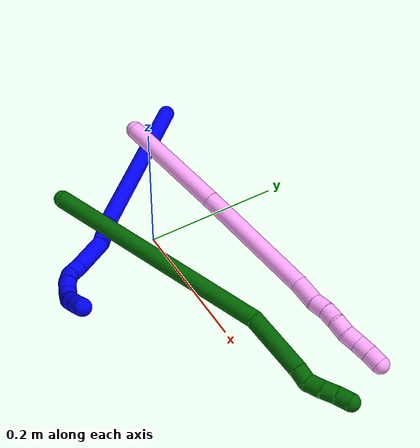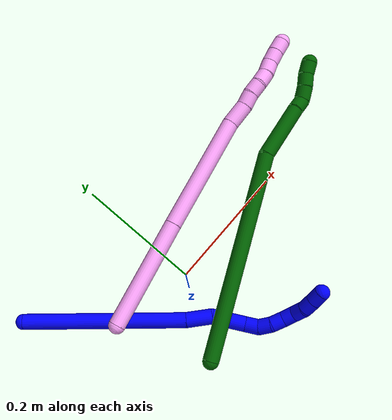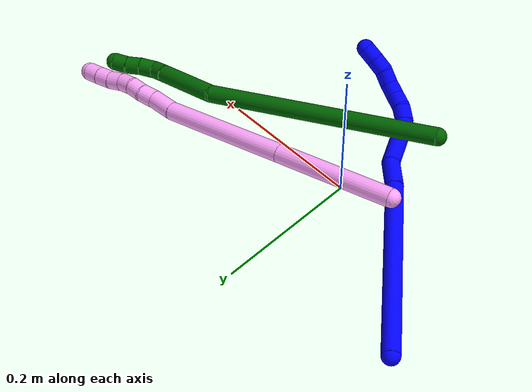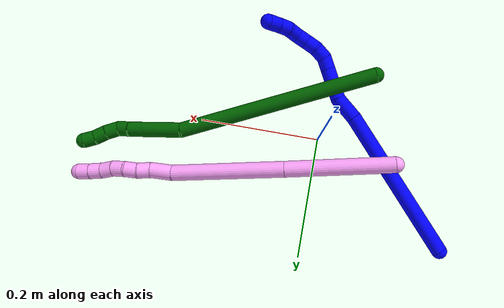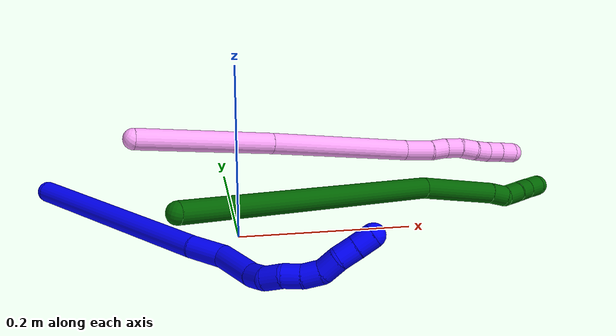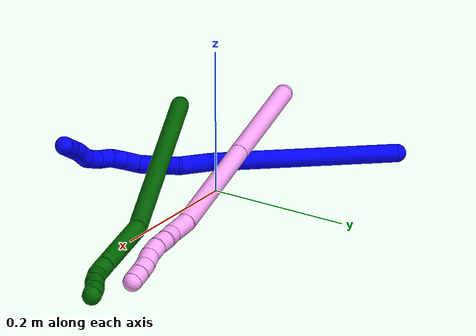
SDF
<sdf version="1.7">
 <world name="default">
  <model name="photoneo_s_sensor">
   <static>1</static>
   <pose>0 0 2 1.57079 1.57079 3.14159</pose>
   <link name="link">
    <inertial><mass>0.1</mass></inertial>
    <sensor name="sensor" type="depth">
     <update_rate>30</update_rate>
     <camera>
      <horizontal_fov>1.22</horizontal_fov>
      <image><width>1920</width><height>1200</height><format>B8G8R8</format></image>
      <clip><near>0.1</near><far>4</far></clip>
      <depth_camera><output>points</output></depth_camera>
     </camera>
     <plugin name="camera_plugin" filename="libgazebo_ros_depth_camera.so">
      <baseline>0.2</baseline>
      <alwaysOn>1</alwaysOn>
      <updateRate>0.0</updateRate>
      <cameraName>camera_ir</cameraName>
      <imageTopicName>/camera/color/image_raw</imageTopicName>
      <cameraInfoTopicName>/camera/color/camera_info</cameraInfoTopicName>
      <depthImageTopicName>/camera/depth/image_raw</depthImageTopicName>
      <depthImageCameraInfoTopicName>/camera/depth/camera_info</depthImageCameraInfoTopicName>
      <pointCloudTopicName>/camera/depth/points</pointCloudTopicName>
      <frameName>fr_optical</frameName>
      <pointCloudCutoff>0.1</pointCloudCutoff>
      <pointCloudCutoffMax>2.0</pointCloudCutoffMax>
      <distortionK1>0</distortionK1>
      <distortionK2>0</distortionK2>
      <distortionK3>0</distortionK3>
      <distortionT1>0</distortionT1>
      <distortionT2>0</distortionT2>
      <CxPrime>0</CxPrime>
      <Cx>0</Cx>
      <Cy>0</Cy>
      <focalLength>0</focalLength>
      <hackBaseline>0</hackBaseline>
     </plugin>
    </sensor>
   </link>
  </model>
  <model name="bin">
   <static>1</static>
   <link name="bottom">
    <collision name="collision-bottom">
     <pose>0 0 -0.01 0 -0 0</pose>
     <geometry><box><size>0.8 0.6 0.02</size></box></geometry>
     <surface>
      <friction><ode><mu>100</mu><mu2>100</mu2></ode></friction>
      <contact><collide_bitmask>65535</collide_bitmask></contact>
     </surface>
    </collision>
   </link>
   <link name="west_wall">
    <collision name="collision-west_wall">
     <pose>-0.41 0 0.1 0 -0 0</pose>
     <geometry><box><size>0.02 0.6 0.2</size></box></geometry>
     <surface>
      <friction><ode><mu>100</mu><mu2>100</mu2></ode></friction>
      <contact><collide_bitmask>65535</collide_bitmask></contact>
     </surface>
    </collision>
   </link>
   <link name="east_wall">
    <collision name="collision-east_wall">
     <pose>0.41 0 0.1 0 -0 0</pose>
     <geometry><box><size>0.02 0.6 0.2</size></box></geometry>
     <surface>
      <friction><ode><mu>100</mu><mu2>100</mu2></ode></friction>
      <contact><collide_bitmask>65535</collide_bitmask></contact>
     </surface>
    </collision>
   </link>
   <link name="south_wall">
    <collision name="collision-south_wall">
     <pose>0 -0.31 0.1 0 -0 0</pose>
     <geometry><box><size>0.8 0.02 0.2</size></box></geometry>
     <surface>
      <friction><ode><mu>100</mu><mu2>100</mu2></ode></friction>
      <contact><collide_bitmask>65535</collide_bitmask></contact>
     </surface>
    </collision>
   </link>
   <link name="north_wall">
    <collision name="collision-north_wall">
     <pose>0 0.31 0.1 0 -0 0</pose>
     <geometry><box><size>0.8 0.02 0.2</size></box></geometry>
     <surface>
      <friction><ode><mu>100</mu><mu2>100</mu2></ode></friction>
      <contact><collide_bitmask>65535</collide_bitmask></contact>
     </surface>
    </collision>
   </link>
  </model>
  <model name="1">
   <static>0</static>
   <link name="1">
    <collision name="collision-cylinder-e_1_1_4">
     <pose>0.082902 -0.089436 0.043331 1.11963 0.695248 0.446577</pose>
     <geometry><cylinder><radius>0.0125</radius><length>0.258836</length></cylinder></geometry>
     <surface>
      <friction><ode><mu>1.16</mu><mu2>1.16</mu2><slip1>0</slip1><slip2>0</slip2></ode></friction>
      <contact><ode><kp>1e+06</kp><kd>1</kd><max_vel>0</max_vel><min_depth>0.001</min_depth></ode></contact>
     </surface>
    </collision>
    <visual name="visual-cylinder-e_1_1_4">
     <pose>0.082902 -0.089436 0.043331 1.11963 0.695248 0.446577</pose>
     <geometry><cylinder><radius>0.0125</radius><length>0.258836</length></cylinder></geometry>
     <material><ambient>0 0 1 1</ambient></material>
    </visual>
    <collision name="collision-cylinder-e_2_4_5">
     <pose>0.179758 -0.193855 0.090988 1.28968 0.729875 0.559598</pose>
     <geometry><cylinder><radius>0.0125</radius><length>0.041855</length></cylinder></geometry>
     <surface>
      <friction><ode><mu>1.16</mu><mu2>1.16</mu2><slip1>0</slip1><slip2>0</slip2></ode></friction>
      <contact><ode><kp>1e+06</kp><kd>1</kd><max_vel>0</max_vel><min_depth>0.001</min_depth></ode></contact>
     </surface>
    </collision>
    <visual name="visual-cylinder-e_2_4_5">
     <pose>0.179758 -0.193855 0.090988 1.28968 0.729875 0.559598</pose>
     <geometry><cylinder><radius>0.0125</radius><length>0.041855</length></cylinder></geometry>
     <material><ambient>0 0 1 1</ambient></material>
    </visual>
    <collision name="collision-cylinder-e_3_5_6">
     <pose>0.208219 -0.22643 0.110018 0.874585 0.564174 0.269324</pose>
     <geometry><cylinder><radius>0.0125</radius><length>0.054259</length></cylinder></geometry>
     <surface>
      <friction><ode><mu>1.16</mu><mu2>1.16</mu2><slip1>0</slip1><slip2>0</slip2></ode></friction>
      <contact><ode><kp>1e+06</kp><kd>1</kd><max_vel>0</max_vel><min_depth>0.001</min_depth></ode></contact>
     </surface>
    </collision>
    <visual name="visual-cylinder-e_3_5_6">
     <pose>0.208219 -0.22643 0.110018 0.874585 0.564174 0.269324</pose>
     <geometry><cylinder><radius>0.0125</radius><length>0.054259</length></cylinder></geometry>
     <material><ambient>0 0 1 1</ambient></material>
    </visual>
    <collision name="collision-cylinder-e_4_6_7">
     <pose>0.230208 -0.249409 0.130704 0.733175 0.748715 0.299432</pose>
     <geometry><cylinder><radius>0.0125</radius><length>0.021985</length></cylinder></geometry>
     <surface>
      <friction><ode><mu>1.16</mu><mu2>1.16</mu2><slip1>0</slip1><slip2>0</slip2></ode></friction>
      <contact><ode><kp>1e+06</kp><kd>1</kd><max_vel>0</max_vel><min_depth>0.001</min_depth></ode></contact>
     </surface>
    </collision>
    <visual name="visual-cylinder-e_4_6_7">
     <pose>0.230208 -0.249409 0.130704 0.733175 0.748715 0.299432</pose>
     <geometry><cylinder><radius>0.0125</radius><length>0.021985</length></cylinder></geometry>
     <material><ambient>0 0 1 1</ambient></material>
    </visual>
    <collision name="collision-cylinder-e_5_7_8">
     <pose>0.247271 -0.259239 0.138203 1.24196 1.1154 0.839416</pose>
     <geometry><cylinder><radius>0.0125</radius><length>0.021334</length></cylinder></geometry>
     <surface>
      <friction><ode><mu>1.16</mu><mu2>1.16</mu2><slip1>0</slip1><slip2>0</slip2></ode></friction>
      <contact><ode><kp>1e+06</kp><kd>1</kd><max_vel>0</max_vel><min_depth>0.001</min_depth></ode></contact>
     </surface>
    </collision>
    <visual name="visual-cylinder-e_5_7_8">
     <pose>0.247271 -0.259239 0.138203 1.24196 1.1154 0.839416</pose>
     <geometry><cylinder><radius>0.0125</radius><length>0.021334</length></cylinder></geometry>
     <material><ambient>0 0 1 1</ambient></material>
    </visual>
    <collision name="collision-cylinder-e_6_8_9">
     <pose>0.265037 -0.26982 0.139038 1.68096 0.924239 1.01522</pose>
     <geometry><cylinder><radius>0.0125</radius><length>0.020512</length></cylinder></geometry>
     <surface>
      <friction><ode><mu>1.16</mu><mu2>1.16</mu2><slip1>0</slip1><slip2>0</slip2></ode></friction>
      <contact><ode><kp>1e+06</kp><kd>1</kd><max_vel>0</max_vel><min_depth>0.001</min_depth></ode></contact>
     </surface>
    </collision>
    <visual name="visual-cylinder-e_6_8_9">
     <pose>0.265037 -0.26982 0.139038 1.68096 0.924239 1.01522</pose>
     <geometry><cylinder><radius>0.0125</radius><length>0.020512</length></cylinder></geometry>
     <material><ambient>0 0 1 1</ambient></material>
    </visual>
    <collision name="collision-cylinder-e_7_9_10">
     <pose>0.282452 -0.2799 0.137291 1.8357 1.15441 1.41057</pose>
     <geometry><cylinder><radius>0.0125</radius><length>0.020184</length></cylinder></geometry>
     <surface>
      <friction><ode><mu>1.16</mu><mu2>1.16</mu2><slip1>0</slip1><slip2>0</slip2></ode></friction>
      <contact><ode><kp>1e+06</kp><kd>1</kd><max_vel>0</max_vel><min_depth>0.001</min_depth></ode></contact>
     </surface>
    </collision>
    <visual name="visual-cylinder-e_7_9_10">
     <pose>0.282452 -0.2799 0.137291 1.8357 1.15441 1.41057</pose>
     <geometry><cylinder><radius>0.0125</radius><length>0.020184</length></cylinder></geometry>
     <material><ambient>0 0 1 1</ambient></material>
    </visual>
    <collision name="collision-cylinder-e_8_10_11">
     <pose>0.302112 -0.283326 0.135245 -2.65716 1.4653 -2.60559</pose>
     <geometry><cylinder><radius>0.0125</radius><length>0.020976</length></cylinder></geometry>
     <surface>
      <friction><ode><mu>1.16</mu><mu2>1.16</mu2><slip1>0</slip1><slip2>0</slip2></ode></friction>
      <contact><ode><kp>1e+06</kp><kd>1</kd><max_vel>0</max_vel><min_depth>0.001</min_depth></ode></contact>
     </surface>
    </collision>
    <visual name="visual-cylinder-e_8_10_11">
     <pose>0.302112 -0.283326 0.135245 -2.65716 1.4653 -2.60559</pose>
     <geometry><cylinder><radius>0.0125</radius><length>0.020976</length></cylinder></geometry>
     <material><ambient>0 0 1 1</ambient></material>
    </visual>
    <collision name="collision-cylinder-e_9_11_12">
     <pose>0.321951 -0.283582 0.130909 2.91607 1.21984 2.82028</pose>
     <geometry><cylinder><radius>0.0125</radius><length>0.020042</length></cylinder></geometry>
     <surface>
      <friction><ode><mu>1.16</mu><mu2>1.16</mu2><slip1>0</slip1><slip2>0</slip2></ode></friction>
      <contact><ode><kp>1e+06</kp><kd>1</kd><max_vel>0</max_vel><min_depth>0.001</min_depth></ode></contact>
     </surface>
    </collision>
    <visual name="visual-cylinder-e_9_11_12">
     <pose>0.321951 -0.283582 0.130909 2.91607 1.21984 2.82028</pose>
     <geometry><cylinder><radius>0.0125</radius><length>0.020042</length></cylinder></geometry>
     <material><ambient>0 0 1 1</ambient></material>
    </visual>
    <collision name="collision-cylinder-e_10_12_2">
     <pose>0.340665 -0.284813 0.12389 3.01624 1.1932 2.9573</pose>
     <geometry><cylinder><radius>0.0125</radius><length>0.020016</length></cylinder></geometry>
     <surface>
      <friction><ode><mu>1.16</mu><mu2>1.16</mu2><slip1>0</slip1><slip2>0</slip2></ode></friction>
      <contact><ode><kp>1e+06</kp><kd>1</kd><max_vel>0</max_vel><min_depth>0.001</min_depth></ode></contact>
     </surface>
    </collision>
    <visual name="visual-cylinder-e_10_12_2">
     <pose>0.340665 -0.284813 0.12389 3.01624 1.1932 2.9573</pose>
     <geometry><cylinder><radius>0.0125</radius><length>0.020016</length></cylinder></geometry>
     <material><ambient>0 0 1 1</ambient></material>
    </visual>
    <collision name="collision-sphere-2">
     <pose>0.349968 -0.285275 0.120229 0 -0 0</pose>
     <geometry><sphere><radius>0.0125</radius></sphere></geometry>
     <surface>
      <friction><ode><mu>1.16</mu><mu2>1.16</mu2><slip1>0</slip1><slip2>0</slip2></ode></friction>
      <contact><ode><kp>1e+06</kp><kd>1</kd><max_vel>0</max_vel><min_depth>0.001</min_depth></ode></contact>
     </surface>
    </collision>
    <visual name="visual-sphere-2">
     <pose>0.349968 -0.285275 0.120229 0 -0 0</pose>
     <geometry><sphere><radius>0.0125</radius></sphere></geometry>
     <material><ambient>0 0 1 1</ambient></material>
    </visual>
    <collision name="collision-sphere-12">
     <pose>0.331362 -0.284352 0.127551 0 -0 0</pose>
     <geometry><sphere><radius>0.0125</radius></sphere></geometry>
     <surface>
      <friction><ode><mu>1.16</mu><mu2>1.16</mu2><slip1>0</slip1><slip2>0</slip2></ode></friction>
      <contact><ode><kp>1e+06</kp><kd>1</kd><max_vel>0</max_vel><min_depth>0.001</min_depth></ode></contact>
     </surface>
    </collision>
    <visual name="visual-sphere-12">
     <pose>0.331362 -0.284352 0.127551 0 -0 0</pose>
     <geometry><sphere><radius>0.0125</radius></sphere></geometry>
     <material><ambient>0 0 1 1</ambient></material>
    </visual>
    <collision name="collision-sphere-11">
     <pose>0.312541 -0.282811 0.134267 0 -0 0</pose>
     <geometry><sphere><radius>0.0125</radius></sphere></geometry>
     <surface>
      <friction><ode><mu>1.16</mu><mu2>1.16</mu2><slip1>0</slip1><slip2>0</slip2></ode></friction>
      <contact><ode><kp>1e+06</kp><kd>1</kd><max_vel>0</max_vel><min_depth>0.001</min_depth></ode></contact>
     </surface>
    </collision>
    <visual name="visual-sphere-11">
     <pose>0.312541 -0.282811 0.134267 0 -0 0</pose>
     <geometry><sphere><radius>0.0125</radius></sphere></geometry>
     <material><ambient>0 0 1 1</ambient></material>
    </visual>
    <collision name="collision-sphere-10">
     <pose>0.291682 -0.28384 0.136222 0 -0 0</pose>
     <geometry><sphere><radius>0.0125</radius></sphere></geometry>
     <surface>
      <friction><ode><mu>1.16</mu><mu2>1.16</mu2><slip1>0</slip1><slip2>0</slip2></ode></friction>
      <contact><ode><kp>1e+06</kp><kd>1</kd><max_vel>0</max_vel><min_depth>0.001</min_depth></ode></contact>
     </surface>
    </collision>
    <visual name="visual-sphere-10">
     <pose>0.291682 -0.28384 0.136222 0 -0 0</pose>
     <geometry><sphere><radius>0.0125</radius></sphere></geometry>
     <material><ambient>0 0 1 1</ambient></material>
    </visual>
    <collision name="collision-sphere-9">
     <pose>0.273222 -0.275961 0.138359 0 -0 0</pose>
     <geometry><sphere><radius>0.0125</radius></sphere></geometry>
     <surface>
      <friction><ode><mu>1.16</mu><mu2>1.16</mu2><slip1>0</slip1><slip2>0</slip2></ode></friction>
      <contact><ode><kp>1e+06</kp><kd>1</kd><max_vel>0</max_vel><min_depth>0.001</min_depth></ode></contact>
     </surface>
    </collision>
    <visual name="visual-sphere-9">
     <pose>0.273222 -0.275961 0.138359 0 -0 0</pose>
     <geometry><sphere><radius>0.0125</radius></sphere></geometry>
     <material><ambient>0 0 1 1</ambient></material>
    </visual>
    <collision name="collision-sphere-4">
     <pose>0.165804 -0.178871 0.086661 0 -0 0</pose>
     <geometry><sphere><radius>0.0125</radius></sphere></geometry>
     <surface>
      <friction><ode><mu>1.16</mu><mu2>1.16</mu2><slip1>0</slip1><slip2>0</slip2></ode></friction>
      <contact><ode><kp>1e+06</kp><kd>1</kd><max_vel>0</max_vel><min_depth>0.001</min_depth></ode></contact>
     </surface>
    </collision>
    <visual name="visual-sphere-4">
     <pose>0.165804 -0.178871 0.086661 0 -0 0</pose>
     <geometry><sphere><radius>0.0125</radius></sphere></geometry>
     <material><ambient>0 0 1 1</ambient></material>
    </visual>
    <collision name="collision-sphere-1">
     <geometry><sphere><radius>0.0125</radius></sphere></geometry>
     <surface>
      <friction><ode><mu>1.16</mu><mu2>1.16</mu2><slip1>0</slip1><slip2>0</slip2></ode></friction>
      <contact><ode><kp>1e+06</kp><kd>1</kd><max_vel>0</max_vel><min_depth>0.001</min_depth></ode></contact>
     </surface>
    </collision>
    <visual name="visual-sphere-1">
     <geometry><sphere><radius>0.0125</radius></sphere></geometry>
     <material><ambient>0 0 1 1</ambient></material>
    </visual>
    <collision name="collision-sphere-8">
     <pose>0.256851 -0.263679 0.139718 0 -0 0</pose>
     <geometry><sphere><radius>0.0125</radius></sphere></geometry>
     <surface>
      <friction><ode><mu>1.16</mu><mu2>1.16</mu2><slip1>0</slip1><slip2>0</slip2></ode></friction>
      <contact><ode><kp>1e+06</kp><kd>1</kd><max_vel>0</max_vel><min_depth>0.001</min_depth></ode></contact>
     </surface>
    </collision>
    <visual name="visual-sphere-8">
     <pose>0.256851 -0.263679 0.139718 0 -0 0</pose>
     <geometry><sphere><radius>0.0125</radius></sphere></geometry>
     <material><ambient>0 0 1 1</ambient></material>
    </visual>
    <collision name="collision-sphere-5">
     <pose>0.193712 -0.20884 0.095315 0 -0 0</pose>
     <geometry><sphere><radius>0.0125</radius></sphere></geometry>
     <surface>
      <friction><ode><mu>1.16</mu><mu2>1.16</mu2><slip1>0</slip1><slip2>0</slip2></ode></friction>
      <contact><ode><kp>1e+06</kp><kd>1</kd><max_vel>0</max_vel><min_depth>0.001</min_depth></ode></contact>
     </surface>
    </collision>
    <visual name="visual-sphere-5">
     <pose>0.193712 -0.20884 0.095315 0 -0 0</pose>
     <geometry><sphere><radius>0.0125</radius></sphere></geometry>
     <material><ambient>0 0 1 1</ambient></material>
    </visual>
    <collision name="collision-sphere-6">
     <pose>0.222726 -0.24402 0.12472 0 -0 0</pose>
     <geometry><sphere><radius>0.0125</radius></sphere></geometry>
     <surface>
      <friction><ode><mu>1.16</mu><mu2>1.16</mu2><slip1>0</slip1><slip2>0</slip2></ode></friction>
      <contact><ode><kp>1e+06</kp><kd>1</kd><max_vel>0</max_vel><min_depth>0.001</min_depth></ode></contact>
     </surface>
    </collision>
    <visual name="visual-sphere-6">
     <pose>0.222726 -0.24402 0.12472 0 -0 0</pose>
     <geometry><sphere><radius>0.0125</radius></sphere></geometry>
     <material><ambient>0 0 1 1</ambient></material>
    </visual>
    <collision name="collision-sphere-7">
     <pose>0.237691 -0.254798 0.136688 0 -0 0</pose>
     <geometry><sphere><radius>0.0125</radius></sphere></geometry>
     <surface>
      <friction><ode><mu>1.16</mu><mu2>1.16</mu2><slip1>0</slip1><slip2>0</slip2></ode></friction>
      <contact><ode><kp>1e+06</kp><kd>1</kd><max_vel>0</max_vel><min_depth>0.001</min_depth></ode></contact>
     </surface>
    </collision>
    <visual name="visual-sphere-7">
     <pose>0.237691 -0.254798 0.136688 0 -0 0</pose>
     <geometry><sphere><radius>0.0125</radius></sphere></geometry>
     <material><ambient>0 0 1 1</ambient></material>
    </visual>
    <inertial>
     <pose>0.162724 -0.166149 0.080758 0 -0 0</pose>
     <mass>0.5</mass>
     <inertia>
      <ixx>0.001545</ixx>
      <ixy>0</ixy>
      <ixz>0</ixz>
      <iyy>0.001429</iyy>
      <iyz>0</iyz>
      <izz>7.9e-05</izz>
     </inertia>
    </inertial>
   </link>
   <pose>-0.224857 0.148812 0.011493 1.32074 -0.745249 -0.333215</pose>
  </model>
  <model name="4">
   <static>0</static>
   <link name="4">
    <collision name="collision-cylinder-e_1_1_4">
     <pose>0.033188 0.020867 0.072626 -0.279789 0.413833 -0.059103</pose>
     <geometry><cylinder><radius>0.0125</radius><length>0.165063</length></cylinder></geometry>
     <surface>
      <friction><ode><mu>1.16</mu><mu2>1.16</mu2><slip1>0</slip1><slip2>0</slip2></ode></friction>
      <contact><ode><kp>1e+06</kp><kd>1</kd><max_vel>0</max_vel><min_depth>0.001</min_depth></ode></contact>
     </surface>
    </collision>
    <visual name="visual-cylinder-e_1_1_4">
     <pose>0.033188 0.020867 0.072626 -0.279789 0.413833 -0.059103</pose>
     <geometry><cylinder><radius>0.0125</radius><length>0.165063</length></cylinder></geometry>
     <material><ambient>1 0.65098 0.996078 1</ambient></material>
    </visual>
    <collision name="collision-cylinder-e_2_4_5">
     <pose>0.100654 0.064206 0.224283 -0.277025 0.395244 -0.055813</pose>
     <geometry><cylinder><radius>0.0125</radius><length>0.178053</length></cylinder></geometry>
     <surface>
      <friction><ode><mu>1.16</mu><mu2>1.16</mu2><slip1>0</slip1><slip2>0</slip2></ode></friction>
      <contact><ode><kp>1e+06</kp><kd>1</kd><max_vel>0</max_vel><min_depth>0.001</min_depth></ode></contact>
     </surface>
    </collision>
    <visual name="visual-cylinder-e_2_4_5">
     <pose>0.100654 0.064206 0.224283 -0.277025 0.395244 -0.055813</pose>
     <geometry><cylinder><radius>0.0125</radius><length>0.178053</length></cylinder></geometry>
     <material><ambient>1 0.65098 0.996078 1</ambient></material>
    </visual>
    <collision name="collision-cylinder-e_3_5_6">
     <pose>0.141072 0.093971 0.318164 -0.456531 0.35537 -0.083389</pose>
     <geometry><cylinder><radius>0.0125</radius><length>0.035294</length></cylinder></geometry>
     <surface>
      <friction><ode><mu>1.16</mu><mu2>1.16</mu2><slip1>0</slip1><slip2>0</slip2></ode></friction>
      <contact><ode><kp>1e+06</kp><kd>1</kd><max_vel>0</max_vel><min_depth>0.001</min_depth></ode></contact>
     </surface>
    </collision>
    <visual name="visual-cylinder-e_3_5_6">
     <pose>0.141072 0.093971 0.318164 -0.456531 0.35537 -0.083389</pose>
     <geometry><cylinder><radius>0.0125</radius><length>0.035294</length></cylinder></geometry>
     <material><ambient>1 0.65098 0.996078 1</ambient></material>
    </visual>
    <collision name="collision-cylinder-e_4_6_7">
     <pose>0.152686 0.104586 0.341231 -0.384202 0.553253 -0.110327</pose>
     <geometry><cylinder><radius>0.0125</radius><length>0.020835</length></cylinder></geometry>
     <surface>
      <friction><ode><mu>1.16</mu><mu2>1.16</mu2><slip1>0</slip1><slip2>0</slip2></ode></friction>
      <contact><ode><kp>1e+06</kp><kd>1</kd><max_vel>0</max_vel><min_depth>0.001</min_depth></ode></contact>
     </surface>
    </collision>
    <visual name="visual-cylinder-e_4_6_7">
     <pose>0.152686 0.104586 0.341231 -0.384202 0.553253 -0.110327</pose>
     <geometry><cylinder><radius>0.0125</radius><length>0.020835</length></cylinder></geometry>
     <material><ambient>1 0.65098 0.996078 1</ambient></material>
    </visual>
    <collision name="collision-cylinder-e_5_7_8">
     <pose>0.161882 0.112189 0.357847 -0.471325 0.376029 -0.09131</pose>
     <geometry><cylinder><radius>0.0125</radius><length>0.020269</length></cylinder></geometry>
     <surface>
      <friction><ode><mu>1.16</mu><mu2>1.16</mu2><slip1>0</slip1><slip2>0</slip2></ode></friction>
      <contact><ode><kp>1e+06</kp><kd>1</kd><max_vel>0</max_vel><min_depth>0.001</min_depth></ode></contact>
     </surface>
    </collision>
    <visual name="visual-cylinder-e_5_7_8">
     <pose>0.161882 0.112189 0.357847 -0.471325 0.376029 -0.09131</pose>
     <geometry><cylinder><radius>0.0125</radius><length>0.020269</length></cylinder></geometry>
     <material><ambient>1 0.65098 0.996078 1</ambient></material>
    </visual>
    <collision name="collision-cylinder-e_6_8_9">
     <pose>0.168332 0.119314 0.375629 -0.294365 0.271396 -0.040479</pose>
     <geometry><cylinder><radius>0.0125</radius><length>0.020356</length></cylinder></geometry>
     <surface>
      <friction><ode><mu>1.16</mu><mu2>1.16</mu2><slip1>0</slip1><slip2>0</slip2></ode></friction>
      <contact><ode><kp>1e+06</kp><kd>1</kd><max_vel>0</max_vel><min_depth>0.001</min_depth></ode></contact>
     </surface>
    </collision>
    <visual name="visual-cylinder-e_6_8_9">
     <pose>0.168332 0.119314 0.375629 -0.294365 0.271396 -0.040479</pose>
     <geometry><cylinder><radius>0.0125</radius><length>0.020356</length></cylinder></geometry>
     <material><ambient>1 0.65098 0.996078 1</ambient></material>
    </visual>
    <collision name="collision-cylinder-e_7_9_10">
     <pose>0.175027 0.123135 0.394164 -0.106264 0.406897 -0.021942</pose>
     <geometry><cylinder><radius>0.0125</radius><length>0.020043</length></cylinder></geometry>
     <surface>
      <friction><ode><mu>1.16</mu><mu2>1.16</mu2><slip1>0</slip1><slip2>0</slip2></ode></friction>
      <contact><ode><kp>1e+06</kp><kd>1</kd><max_vel>0</max_vel><min_depth>0.001</min_depth></ode></contact>
     </surface>
    </collision>
    <visual name="visual-cylinder-e_7_9_10">
     <pose>0.175027 0.123135 0.394164 -0.106264 0.406897 -0.021942</pose>
     <geometry><cylinder><radius>0.0125</radius><length>0.020043</length></cylinder></geometry>
     <material><ambient>1 0.65098 0.996078 1</ambient></material>
    </visual>
    <collision name="collision-cylinder-e_8_10_11">
     <pose>0.183178 0.126563 0.412062 -0.273341 0.431749 -0.060299</pose>
     <geometry><cylinder><radius>0.0125</radius><length>0.020001</length></cylinder></geometry>
     <surface>
      <friction><ode><mu>1.16</mu><mu2>1.16</mu2><slip1>0</slip1><slip2>0</slip2></ode></friction>
      <contact><ode><kp>1e+06</kp><kd>1</kd><max_vel>0</max_vel><min_depth>0.001</min_depth></ode></contact>
     </surface>
    </collision>
    <visual name="visual-cylinder-e_8_10_11">
     <pose>0.183178 0.126563 0.412062 -0.273341 0.431749 -0.060299</pose>
     <geometry><cylinder><radius>0.0125</radius><length>0.020001</length></cylinder></geometry>
     <material><ambient>1 0.65098 0.996078 1</ambient></material>
    </visual>
    <collision name="collision-cylinder-e_9_11_2">
     <pose>0.191111 0.131746 0.429714 -0.297486 0.382538 -0.058016</pose>
     <geometry><cylinder><radius>0.0125</radius><length>0.020085</length></cylinder></geometry>
     <surface>
      <friction><ode><mu>1.16</mu><mu2>1.16</mu2><slip1>0</slip1><slip2>0</slip2></ode></friction>
      <contact><ode><kp>1e+06</kp><kd>1</kd><max_vel>0</max_vel><min_depth>0.001</min_depth></ode></contact>
     </surface>
    </collision>
    <visual name="visual-cylinder-e_9_11_2">
     <pose>0.191111 0.131746 0.429714 -0.297486 0.382538 -0.058016</pose>
     <geometry><cylinder><radius>0.0125</radius><length>0.020085</length></cylinder></geometry>
     <material><ambient>1 0.65098 0.996078 1</ambient></material>
    </visual>
    <collision name="collision-sphere-2">
     <pose>0.194859 0.134477 0.438622 0 -0 0</pose>
     <geometry><sphere><radius>0.0125</radius></sphere></geometry>
     <surface>
      <friction><ode><mu>1.16</mu><mu2>1.16</mu2><slip1>0</slip1><slip2>0</slip2></ode></friction>
      <contact><ode><kp>1e+06</kp><kd>1</kd><max_vel>0</max_vel><min_depth>0.001</min_depth></ode></contact>
     </surface>
    </collision>
    <visual name="visual-sphere-2">
     <pose>0.194859 0.134477 0.438622 0 -0 0</pose>
     <geometry><sphere><radius>0.0125</radius></sphere></geometry>
     <material><ambient>1 0.65098 0.996078 1</ambient></material>
    </visual>
    <collision name="collision-sphere-11">
     <pose>0.187362 0.129015 0.420807 0 -0 0</pose>
     <geometry><sphere><radius>0.0125</radius></sphere></geometry>
     <surface>
      <friction><ode><mu>1.16</mu><mu2>1.16</mu2><slip1>0</slip1><slip2>0</slip2></ode></friction>
      <contact><ode><kp>1e+06</kp><kd>1</kd><max_vel>0</max_vel><min_depth>0.001</min_depth></ode></contact>
     </surface>
    </collision>
    <visual name="visual-sphere-11">
     <pose>0.187362 0.129015 0.420807 0 -0 0</pose>
     <geometry><sphere><radius>0.0125</radius></sphere></geometry>
     <material><ambient>1 0.65098 0.996078 1</ambient></material>
    </visual>
    <collision name="collision-sphere-10">
     <pose>0.178993 0.124111 0.403316 0 -0 0</pose>
     <geometry><sphere><radius>0.0125</radius></sphere></geometry>
     <surface>
      <friction><ode><mu>1.16</mu><mu2>1.16</mu2><slip1>0</slip1><slip2>0</slip2></ode></friction>
      <contact><ode><kp>1e+06</kp><kd>1</kd><max_vel>0</max_vel><min_depth>0.001</min_depth></ode></contact>
     </surface>
    </collision>
    <visual name="visual-sphere-10">
     <pose>0.178993 0.124111 0.403316 0 -0 0</pose>
     <geometry><sphere><radius>0.0125</radius></sphere></geometry>
     <material><ambient>1 0.65098 0.996078 1</ambient></material>
    </visual>
    <collision name="collision-sphere-9">
     <pose>0.17106 0.122159 0.385013 0 -0 0</pose>
     <geometry><sphere><radius>0.0125</radius></sphere></geometry>
     <surface>
      <friction><ode><mu>1.16</mu><mu2>1.16</mu2><slip1>0</slip1><slip2>0</slip2></ode></friction>
      <contact><ode><kp>1e+06</kp><kd>1</kd><max_vel>0</max_vel><min_depth>0.001</min_depth></ode></contact>
     </surface>
    </collision>
    <visual name="visual-sphere-9">
     <pose>0.17106 0.122159 0.385013 0 -0 0</pose>
     <geometry><sphere><radius>0.0125</radius></sphere></geometry>
     <material><ambient>1 0.65098 0.996078 1</ambient></material>
    </visual>
    <collision name="collision-sphere-4">
     <pose>0.066376 0.041735 0.145253 0 -0 0</pose>
     <geometry><sphere><radius>0.0125</radius></sphere></geometry>
     <surface>
      <friction><ode><mu>1.16</mu><mu2>1.16</mu2><slip1>0</slip1><slip2>0</slip2></ode></friction>
      <contact><ode><kp>1e+06</kp><kd>1</kd><max_vel>0</max_vel><min_depth>0.001</min_depth></ode></contact>
     </surface>
    </collision>
    <visual name="visual-sphere-4">
     <pose>0.066376 0.041735 0.145253 0 -0 0</pose>
     <geometry><sphere><radius>0.0125</radius></sphere></geometry>
     <material><ambient>1 0.65098 0.996078 1</ambient></material>
    </visual>
    <collision name="collision-sphere-1">
     <geometry><sphere><radius>0.0125</radius></sphere></geometry>
     <surface>
      <friction><ode><mu>1.16</mu><mu2>1.16</mu2><slip1>0</slip1><slip2>0</slip2></ode></friction>
      <contact><ode><kp>1e+06</kp><kd>1</kd><max_vel>0</max_vel><min_depth>0.001</min_depth></ode></contact>
     </surface>
    </collision>
    <visual name="visual-sphere-1">
     <geometry><sphere><radius>0.0125</radius></sphere></geometry>
     <material><ambient>1 0.65098 0.996078 1</ambient></material>
    </visual>
    <collision name="collision-sphere-8">
     <pose>0.165603 0.116469 0.366246 0 -0 0</pose>
     <geometry><sphere><radius>0.0125</radius></sphere></geometry>
     <surface>
      <friction><ode><mu>1.16</mu><mu2>1.16</mu2><slip1>0</slip1><slip2>0</slip2></ode></friction>
      <contact><ode><kp>1e+06</kp><kd>1</kd><max_vel>0</max_vel><min_depth>0.001</min_depth></ode></contact>
     </surface>
    </collision>
    <visual name="visual-sphere-8">
     <pose>0.165603 0.116469 0.366246 0 -0 0</pose>
     <geometry><sphere><radius>0.0125</radius></sphere></geometry>
     <material><ambient>1 0.65098 0.996078 1</ambient></material>
    </visual>
    <collision name="collision-sphere-5">
     <pose>0.134932 0.086677 0.303313 0 -0 0</pose>
     <geometry><sphere><radius>0.0125</radius></sphere></geometry>
     <surface>
      <friction><ode><mu>1.16</mu><mu2>1.16</mu2><slip1>0</slip1><slip2>0</slip2></ode></friction>
      <contact><ode><kp>1e+06</kp><kd>1</kd><max_vel>0</max_vel><min_depth>0.001</min_depth></ode></contact>
     </surface>
    </collision>
    <visual name="visual-sphere-5">
     <pose>0.134932 0.086677 0.303313 0 -0 0</pose>
     <geometry><sphere><radius>0.0125</radius></sphere></geometry>
     <material><ambient>1 0.65098 0.996078 1</ambient></material>
    </visual>
    <collision name="collision-sphere-6">
     <pose>0.147212 0.101264 0.333014 0 -0 0</pose>
     <geometry><sphere><radius>0.0125</radius></sphere></geometry>
     <surface>
      <friction><ode><mu>1.16</mu><mu2>1.16</mu2><slip1>0</slip1><slip2>0</slip2></ode></friction>
      <contact><ode><kp>1e+06</kp><kd>1</kd><max_vel>0</max_vel><min_depth>0.001</min_depth></ode></contact>
     </surface>
    </collision>
    <visual name="visual-sphere-6">
     <pose>0.147212 0.101264 0.333014 0 -0 0</pose>
     <geometry><sphere><radius>0.0125</radius></sphere></geometry>
     <material><ambient>1 0.65098 0.996078 1</ambient></material>
    </visual>
    <collision name="collision-sphere-7">
     <pose>0.15816 0.107909 0.349448 0 -0 0</pose>
     <geometry><sphere><radius>0.0125</radius></sphere></geometry>
     <surface>
      <friction><ode><mu>1.16</mu><mu2>1.16</mu2><slip1>0</slip1><slip2>0</slip2></ode></friction>
      <contact><ode><kp>1e+06</kp><kd>1</kd><max_vel>0</max_vel><min_depth>0.001</min_depth></ode></contact>
     </surface>
    </collision>
    <visual name="visual-sphere-7">
     <pose>0.15816 0.107909 0.349448 0 -0 0</pose>
     <geometry><sphere><radius>0.0125</radius></sphere></geometry>
     <material><ambient>1 0.65098 0.996078 1</ambient></material>
    </visual>
    <inertial>
     <pose>0.098556 0.065441 0.219867 0 -0 0</pose>
     <mass>0.5</mass>
     <inertia>
      <ixx>0.00077</ixx>
      <ixy>0</ixy>
      <ixz>0</ixz>
      <iyy>0.000807</iyy>
      <iyz>0</iyz>
      <izz>-0.000529</izz>
     </inertia>
    </inertial>
   </link>
   <pose>-0.112186 0.035411 0.111707 2.44978 -0.685617 1.07248</pose>
  </model>
  <model name="6">
   <static>0</static>
   <link name="6">
    <collision name="collision-cylinder-e_1_1_4">
     <pose>0.069504 0.080812 0.123613 -0.579007 0.439873 -0.132984</pose>
     <geometry><cylinder><radius>0.0125</radius><length>0.326444</length></cylinder></geometry>
     <surface>
      <friction><ode><mu>1.16</mu><mu2>1.16</mu2><slip1>0</slip1><slip2>0</slip2></ode></friction>
      <contact><ode><kp>1e+06</kp><kd>1</kd><max_vel>0</max_vel><min_depth>0.001</min_depth></ode></contact>
     </surface>
    </collision>
    <visual name="visual-cylinder-e_1_1_4">
     <pose>0.069504 0.080812 0.123613 -0.579007 0.439873 -0.132984</pose>
     <geometry><cylinder><radius>0.0125</radius><length>0.326444</length></cylinder></geometry>
     <material><ambient>0 0.392157 0.003922 1</ambient></material>
    </visual>
    <collision name="collision-cylinder-e_2_4_5">
     <pose>0.150151 0.175724 0.288684 -0.327829 0.249164 -0.04142</pose>
     <geometry><cylinder><radius>0.0125</radius><length>0.090372</length></cylinder></geometry>
     <surface>
      <friction><ode><mu>1.16</mu><mu2>1.16</mu2><slip1>0</slip1><slip2>0</slip2></ode></friction>
      <contact><ode><kp>1e+06</kp><kd>1</kd><max_vel>0</max_vel><min_depth>0.001</min_depth></ode></contact>
     </surface>
    </collision>
    <visual name="visual-cylinder-e_2_4_5">
     <pose>0.150151 0.175724 0.288684 -0.327829 0.249164 -0.04142</pose>
     <geometry><cylinder><radius>0.0125</radius><length>0.090372</length></cylinder></geometry>
     <material><ambient>0 0.392157 0.003922 1</ambient></material>
    </visual>
    <collision name="collision-cylinder-e_3_5_6">
     <pose>0.163946 0.191763 0.33969 -0.200312 0.265833 -0.026871</pose>
     <geometry><cylinder><radius>0.0125</radius><length>0.020194</length></cylinder></geometry>
     <surface>
      <friction><ode><mu>1.16</mu><mu2>1.16</mu2><slip1>0</slip1><slip2>0</slip2></ode></friction>
      <contact><ode><kp>1e+06</kp><kd>1</kd><max_vel>0</max_vel><min_depth>0.001</min_depth></ode></contact>
     </surface>
    </collision>
    <visual name="visual-cylinder-e_3_5_6">
     <pose>0.163946 0.191763 0.33969 -0.200312 0.265833 -0.026871</pose>
     <geometry><cylinder><radius>0.0125</radius><length>0.020194</length></cylinder></geometry>
     <material><ambient>0 0.392157 0.003922 1</ambient></material>
    </visual>
    <collision name="collision-cylinder-e_4_6_7">
     <pose>0.170776 0.200629 0.357007 -0.728206 0.381633 -0.146964</pose>
     <geometry><cylinder><radius>0.0125</radius><length>0.022433</length></cylinder></geometry>
     <surface>
      <friction><ode><mu>1.16</mu><mu2>1.16</mu2><slip1>0</slip1><slip2>0</slip2></ode></friction>
      <contact><ode><kp>1e+06</kp><kd>1</kd><max_vel>0</max_vel><min_depth>0.001</min_depth></ode></contact>
     </surface>
    </collision>
    <visual name="visual-cylinder-e_4_6_7">
     <pose>0.170776 0.200629 0.357007 -0.728206 0.381633 -0.146964</pose>
     <geometry><cylinder><radius>0.0125</radius><length>0.022433</length></cylinder></geometry>
     <material><ambient>0 0.392157 0.003922 1</ambient></material>
    </visual>
    <collision name="collision-cylinder-e_5_7_8">
     <pose>0.179987 0.213826 0.371139 -0.778008 0.513171 -0.214262</pose>
     <geometry><cylinder><radius>0.0125</radius><length>0.020506</length></cylinder></geometry>
     <surface>
      <friction><ode><mu>1.16</mu><mu2>1.16</mu2><slip1>0</slip1><slip2>0</slip2></ode></friction>
      <contact><ode><kp>1e+06</kp><kd>1</kd><max_vel>0</max_vel><min_depth>0.001</min_depth></ode></contact>
     </surface>
    </collision>
    <visual name="visual-cylinder-e_5_7_8">
     <pose>0.179987 0.213826 0.371139 -0.778008 0.513171 -0.214262</pose>
     <geometry><cylinder><radius>0.0125</radius><length>0.020506</length></cylinder></geometry>
     <material><ambient>0 0.392157 0.003922 1</ambient></material>
    </visual>
    <collision name="collision-cylinder-e_6_8_2">
     <pose>0.188479 0.226186 0.384675 -0.704012 0.352197 -0.130531</pose>
     <geometry><cylinder><radius>0.0125</radius><length>0.02005</length></cylinder></geometry>
     <surface>
      <friction><ode><mu>1.16</mu><mu2>1.16</mu2><slip1>0</slip1><slip2>0</slip2></ode></friction>
      <contact><ode><kp>1e+06</kp><kd>1</kd><max_vel>0</max_vel><min_depth>0.001</min_depth></ode></contact>
     </surface>
    </collision>
    <visual name="visual-cylinder-e_6_8_2">
     <pose>0.188479 0.226186 0.384675 -0.704012 0.352197 -0.130531</pose>
     <geometry><cylinder><radius>0.0125</radius><length>0.02005</length></cylinder></geometry>
     <material><ambient>0 0.392157 0.003922 1</ambient></material>
    </visual>
    <collision name="collision-sphere-2">
     <pose>0.191937 0.232277 0.391847 0 -0 0</pose>
     <geometry><sphere><radius>0.0125</radius></sphere></geometry>
     <surface>
      <friction><ode><mu>1.16</mu><mu2>1.16</mu2><slip1>0</slip1><slip2>0</slip2></ode></friction>
      <contact><ode><kp>1e+06</kp><kd>1</kd><max_vel>0</max_vel><min_depth>0.001</min_depth></ode></contact>
     </surface>
    </collision>
    <visual name="visual-sphere-2">
     <pose>0.191937 0.232277 0.391847 0 -0 0</pose>
     <geometry><sphere><radius>0.0125</radius></sphere></geometry>
     <material><ambient>0 0.392157 0.003922 1</ambient></material>
    </visual>
    <collision name="collision-sphere-4">
     <pose>0.139008 0.161624 0.247225 0 -0 0</pose>
     <geometry><sphere><radius>0.0125</radius></sphere></geometry>
     <surface>
      <friction><ode><mu>1.16</mu><mu2>1.16</mu2><slip1>0</slip1><slip2>0</slip2></ode></friction>
      <contact><ode><kp>1e+06</kp><kd>1</kd><max_vel>0</max_vel><min_depth>0.001</min_depth></ode></contact>
     </surface>
    </collision>
    <visual name="visual-sphere-4">
     <pose>0.139008 0.161624 0.247225 0 -0 0</pose>
     <geometry><sphere><radius>0.0125</radius></sphere></geometry>
     <material><ambient>0 0.392157 0.003922 1</ambient></material>
    </visual>
    <collision name="collision-sphere-1">
     <geometry><sphere><radius>0.0125</radius></sphere></geometry>
     <surface>
      <friction><ode><mu>1.16</mu><mu2>1.16</mu2><slip1>0</slip1><slip2>0</slip2></ode></friction>
      <contact><ode><kp>1e+06</kp><kd>1</kd><max_vel>0</max_vel><min_depth>0.001</min_depth></ode></contact>
     </surface>
    </collision>
    <visual name="visual-sphere-1">
     <geometry><sphere><radius>0.0125</radius></sphere></geometry>
     <material><ambient>0 0.392157 0.003922 1</ambient></material>
    </visual>
    <collision name="collision-sphere-8">
     <pose>0.185021 0.220095 0.377502 0 -0 0</pose>
     <geometry><sphere><radius>0.0125</radius></sphere></geometry>
     <surface>
      <friction><ode><mu>1.16</mu><mu2>1.16</mu2><slip1>0</slip1><slip2>0</slip2></ode></friction>
      <contact><ode><kp>1e+06</kp><kd>1</kd><max_vel>0</max_vel><min_depth>0.001</min_depth></ode></contact>
     </surface>
    </collision>
    <visual name="visual-sphere-8">
     <pose>0.185021 0.220095 0.377502 0 -0 0</pose>
     <geometry><sphere><radius>0.0125</radius></sphere></geometry>
     <material><ambient>0 0.392157 0.003922 1</ambient></material>
    </visual>
    <collision name="collision-sphere-5">
     <pose>0.161293 0.189824 0.330143 0 -0 0</pose>
     <geometry><sphere><radius>0.0125</radius></sphere></geometry>
     <surface>
      <friction><ode><mu>1.16</mu><mu2>1.16</mu2><slip1>0</slip1><slip2>0</slip2></ode></friction>
      <contact><ode><kp>1e+06</kp><kd>1</kd><max_vel>0</max_vel><min_depth>0.001</min_depth></ode></contact>
     </surface>
    </collision>
    <visual name="visual-sphere-5">
     <pose>0.161293 0.189824 0.330143 0 -0 0</pose>
     <geometry><sphere><radius>0.0125</radius></sphere></geometry>
     <material><ambient>0 0.392157 0.003922 1</ambient></material>
    </visual>
    <collision name="collision-sphere-6">
     <pose>0.166599 0.193701 0.349238 0 -0 0</pose>
     <geometry><sphere><radius>0.0125</radius></sphere></geometry>
     <surface>
      <friction><ode><mu>1.16</mu><mu2>1.16</mu2><slip1>0</slip1><slip2>0</slip2></ode></friction>
      <contact><ode><kp>1e+06</kp><kd>1</kd><max_vel>0</max_vel><min_depth>0.001</min_depth></ode></contact>
     </surface>
    </collision>
    <visual name="visual-sphere-6">
     <pose>0.166599 0.193701 0.349238 0 -0 0</pose>
     <geometry><sphere><radius>0.0125</radius></sphere></geometry>
     <material><ambient>0 0.392157 0.003922 1</ambient></material>
    </visual>
    <collision name="collision-sphere-7">
     <pose>0.174953 0.207557 0.364777 0 -0 0</pose>
     <geometry><sphere><radius>0.0125</radius></sphere></geometry>
     <surface>
      <friction><ode><mu>1.16</mu><mu2>1.16</mu2><slip1>0</slip1><slip2>0</slip2></ode></friction>
      <contact><ode><kp>1e+06</kp><kd>1</kd><max_vel>0</max_vel><min_depth>0.001</min_depth></ode></contact>
     </surface>
    </collision>
    <visual name="visual-sphere-7">
     <pose>0.174953 0.207557 0.364777 0 -0 0</pose>
     <geometry><sphere><radius>0.0125</radius></sphere></geometry>
     <material><ambient>0 0.392157 0.003922 1</ambient></material>
    </visual>
    <inertial>
     <pose>0.101741 0.119108 0.193267 0 -0 0</pose>
     <mass>0.5</mass>
     <inertia>
      <ixx>0.002342</ixx>
      <ixy>0</ixy>
      <ixz>0</ixz>
      <iyy>0.002238</iyy>
      <iyz>0</iyz>
      <izz>-0.002693</izz>
     </inertia>
    </inertial>
   </link>
   <pose>-0.069421 -0.105378 0.077408 1.91921 0.726493 1.52169</pose>
  </model>
 </world>
</sdf>
